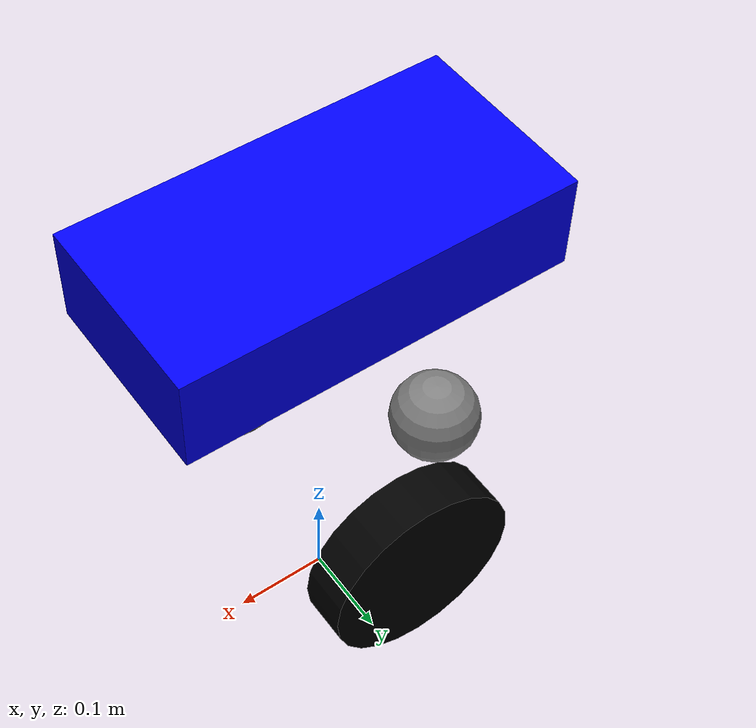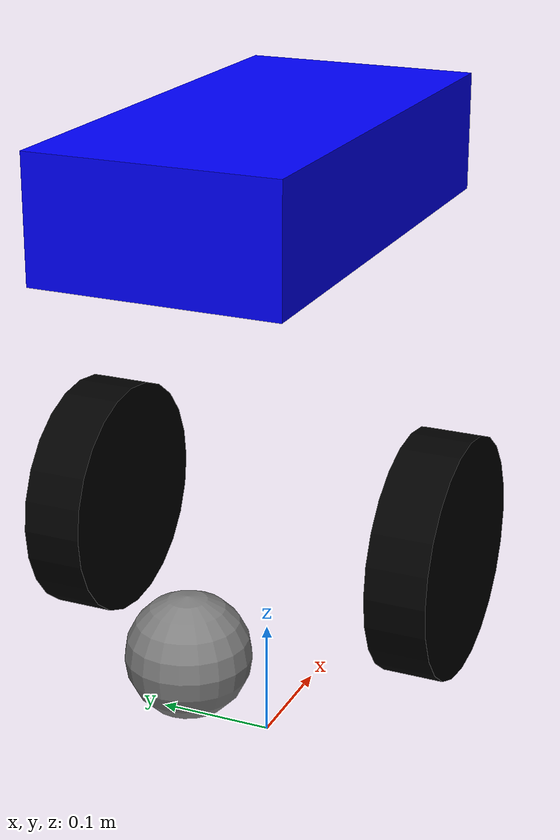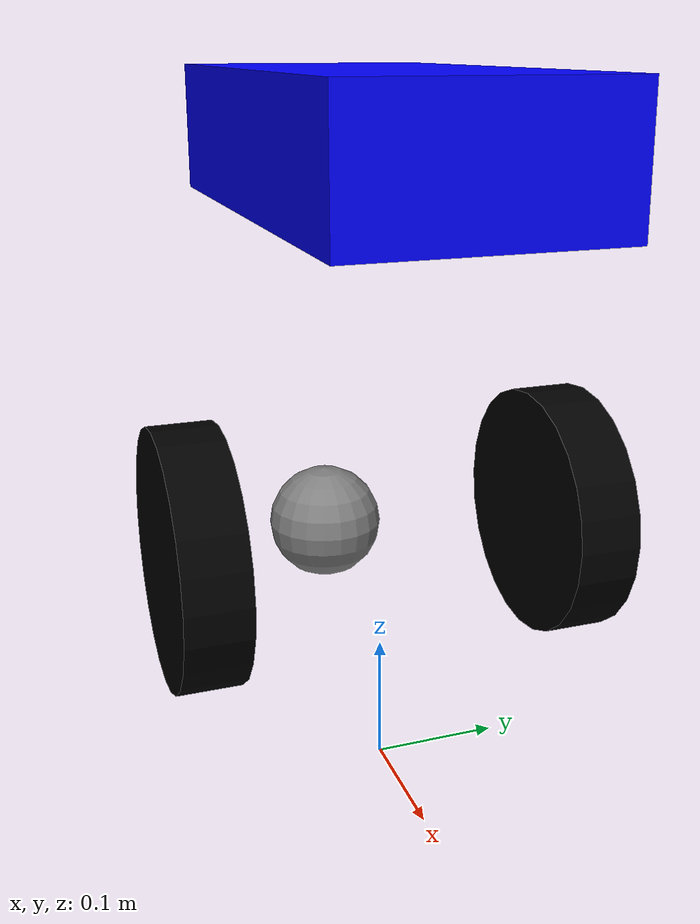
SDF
<?xml version="1.0" ?>
<sdf version="1.8">
  <model name="car">
    <pose>0 0 0.5 0 0 0</pose>

    <link name="base_link">
      <inertial>
        <mass>1.0</mass>
        <inertia>
          <ixx>0.1</ixx><ixy>0</ixy><ixz>0</ixz>
          <iyy>0.1</iyy><iyz>0</iyz><izz>0.1</izz>
        </inertia>
      </inertial>
      <visual name="visual">
        <geometry><box><size>0.4 0.2 0.1</size></box></geometry>
        <material><ambient>0 0 1 1</ambient><diffuse>0 0 1 1</diffuse></material>
      </visual>
      <collision name="collision">
        <geometry><box><size>0.4 0.2 0.1</size></box></geometry>
      </collision>

      <!-- Caméra pointée vers le sol -->
      <sensor name="camera" type="camera">
        <pose>0.2 0 0.1 0 0.7854 0</pose>
        <update_rate>30</update_rate>
        <camera>
          <horizontal_fov>1.047</horizontal_fov>
          <image>
            <width>320</width>
            <height>240</height>
            <format>R8G8B8</format>
          </image>
          <clip><near>0.02</near><far>10</far></clip>
        </camera>
        <plugin filename="gz-sim-sensors-system" name="gz::sim::systems::Sensors"/>
        <topic>camera/image_raw</topic>
        <always_on>1</always_on>
        <visualize>true</visualize>
      </sensor>
    </link>

    <link name="left_wheel">
      <pose>0 0.15 -0.3 1.5707 0 0</pose>
      <inertial>
        <mass>0.1</mass>
        <inertia>
          <ixx>0.001</ixx><ixy>0</ixy><ixz>0</ixz>
          <iyy>0.001</iyy><iyz>0</iyz><izz>0.001</izz>
        </inertia>
      </inertial>
      <visual name="visual">
        <geometry><cylinder><radius>0.1</radius><length>0.05</length></cylinder></geometry>
        <material><ambient>0 0 0 1</ambient><diffuse>0 0 0 1</diffuse></material>
      </visual>
      <collision name="collision">
        <geometry><cylinder><radius>0.1</radius><length>0.05</length></cylinder></geometry>
        <surface><friction><ode><mu>1.0</mu><mu2>1.0</mu2></ode></friction></surface>
      </collision>
    </link>

    <link name="right_wheel">
      <pose>0 -0.15 -0.3 1.5707 0 0</pose>
      <inertial>
        <mass>0.1</mass>
        <inertia>
          <ixx>0.001</ixx><ixy>0</ixy><ixz>0</ixz>
          <iyy>0.001</iyy><iyz>0</iyz><izz>0.001</izz>
        </inertia>
      </inertial>
      <visual name="visual">
        <geometry><cylinder><radius>0.1</radius><length>0.05</length></cylinder></geometry>
        <material><ambient>0 0 0 1</ambient><diffuse>0 0 0 1</diffuse></material>
      </visual>
      <collision name="collision">
        <geometry><cylinder><radius>0.1</radius><length>0.05</length></cylinder></geometry>
        <surface><friction><ode><mu>1.0</mu><mu2>1.0</mu2></ode></friction></surface>
      </collision>
    </link>

    <link name="caster">
      <pose>-0.15 0 -0.35 0 0 0</pose>
      <inertial>
        <mass>0.05</mass>
        <inertia>
          <ixx>0.0001</ixx><ixy>0</ixy><ixz>0</ixz>
          <iyy>0.0001</iyy><iyz>0</iyz><izz>0.0001</izz>
        </inertia>
      </inertial>
      <visual name="visual">
        <geometry><sphere><radius>0.05</radius></sphere></geometry>
        <material><ambient>0.5 0.5 0.5 1</ambient></material>
      </visual>
      <collision name="collision">
        <geometry><sphere><radius>0.05</radius></sphere></geometry>
        <surface><friction><ode><mu>0.0</mu><mu2>0.0</mu2></ode></friction></surface>
      </collision>
    </link>

    <joint name="left_wheel_joint" type="revolute">
      <parent>base_link</parent>
      <child>left_wheel</child>
      <axis>
        <xyz>0 0 1</xyz>
        <limit><lower>-1e16</lower><upper>1e16</upper></limit>
      </axis>
    </joint>

    <joint name="right_wheel_joint" type="revolute">
      <parent>base_link</parent>
      <child>right_wheel</child>
      <axis>
        <xyz>0 0 1</xyz>
        <limit><lower>-1e16</lower><upper>1e16</upper></limit>
      </axis>
    </joint>

    <joint name="caster_joint" type="ball">
      <parent>base_link</parent>
      <child>caster</child>
    </joint>

    <plugin filename="gz-sim-diff-drive-system" name="gz::sim::systems::DiffDrive">
      <left_joint>left_wheel_joint</left_joint>
      <right_joint>right_wheel_joint</right_joint>
      <wheel_separation>0.3</wheel_separation>
      <wheel_radius>0.1</wheel_radius>
      <topic>/model/car/cmd_vel</topic>
    </plugin>

  </model>
</sdf>
